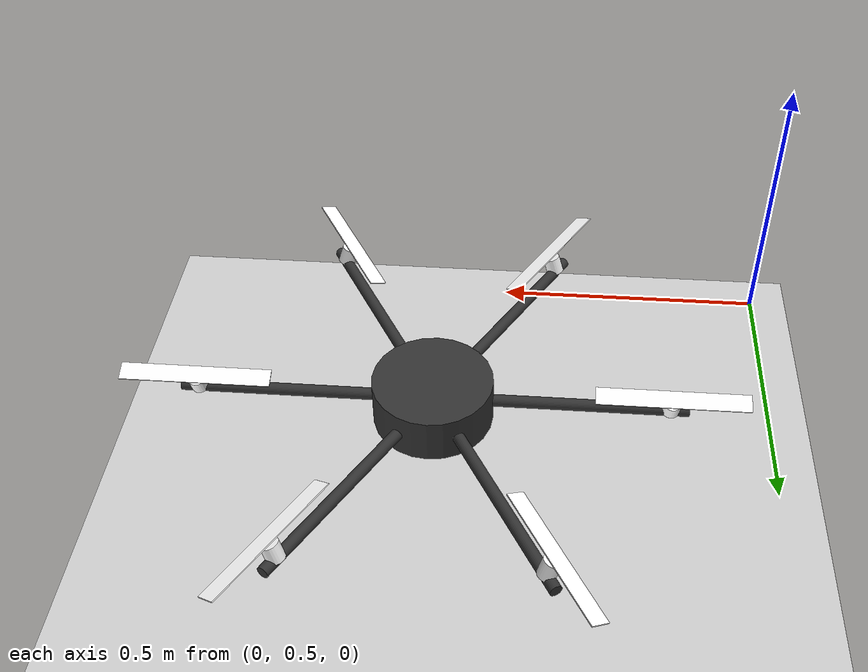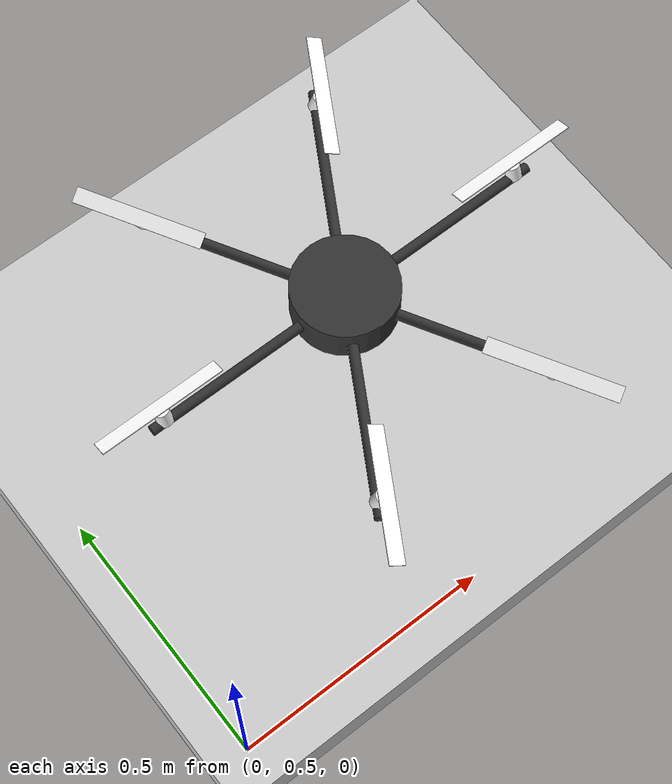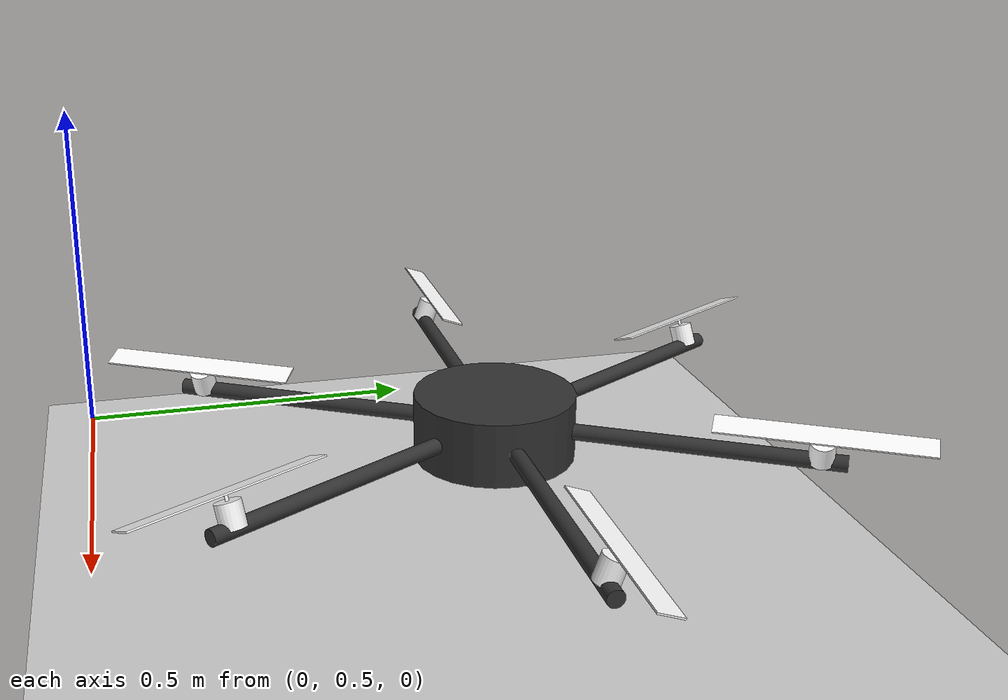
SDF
<?xml version="1.0"?>
<sdf version="1.5">
<world name="mrsim">
    <physics type='ode'>
        <max_step_size>0.002000</max_step_size>
        <real_time_factor>1.000000</real_time_factor>
        <real_time_update_rate>500.000000</real_time_update_rate>
        <gravity>0 0 -9.81</gravity>
        <magnetic_field>23.816e-6 -0.41e-6 -39.829e-6</magnetic_field>
    </physics>

    <light type="directional" name="sun">
        <cast_shadows>true</cast_shadows>
        <pose>0 0 10 0 0 0</pose>
        <diffuse>0.8 0.8 0.8 1</diffuse>
        <specular>0.2 0.2 0.2 1</specular>
        <attenuation>
        <range>1000</range>
        <constant>0.9</constant>
        <linear>0.01</linear>
        <quadratic>0.001</quadratic>
        </attenuation>
        <direction>-0.5 0.1 -0.9</direction>
    </light>

    <model name="ground_plane">
        <static>true</static>
        <link name="link">
            <pose>0 0 -0.05 0 0 0</pose>
            <collision name="collision">
                <geometry>
                    <box>
                        <size>20 20 0.1</size>
                    </box>
                </geometry>
            </collision>
            <visual name="visual">
                <geometry>
                    <box>
                        <size>20 20 0.1</size>
                    </box>
                </geometry>
                <material>
                    <ambient>0.8 0.8 0.8 1</ambient>
                    <diffuse>0.8 0.8 0.8 1</diffuse>
                    <specular>0.8 0.8 0.8 1</specular>
                </material>
            </visual>
        </link>
    </model>

    <model name="TX">
        <pose>0.6 1 0.2 0 0 0</pose>
        <include>
            <uri>model://mrsim-tilthex</uri>
            <name>tx</name>
        </include>
    </model>

    <plugin name="optitrack" filename="optitrack-gazebo.so">
        <hz>1000</hz>
        <port>1509</port>
        <publish>
            <link>TX::tx::base</link>
            <name>TX</name>
        </publish>
    </plugin>
</world>
</sdf>

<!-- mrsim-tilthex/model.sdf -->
<sdf version="1.5">
<model name="mrsim-tilthex">
    <link name="base">
        <inertial>
            <mass>2.5</mass>
            <inertia>
                <ixx>0.0115</ixx><ixy>0</ixy><ixz>0</ixz>
                <iyy>0.0115</iyy><iyz>0</iyz>
                <izz>0.0194</izz>
            </inertia>
        </inertial>

        <collision name="body">
            <geometry>
                <cylinder><radius>0.1</radius><length>0.08</length></cylinder>
            </geometry>
        </collision>

        <!-- three spheres to make contact stable -->
        <collision name="land_1">
            <pose>0.067 0 0 0 0 0</pose>
            <geometry>
                <sphere><radius>0.04</radius></sphere>
            </geometry>
        </collision>
        <collision name="land_2">
            <pose>-0.06 0.03 0 0 0 0</pose>
            <geometry>
                <sphere><radius>0.04</radius></sphere>
            </geometry>
        </collision>
        <collision name="land_3">
            <pose>-0.05 -0.03 0 0 0 0</pose>
            <geometry>
                <sphere><radius>0.04</radius></sphere>
            </geometry>
        </collision>

        <!-- contact for the arms -->
        <collision name="arm_1">
            <pose>0.21 0 0 0 1.5708 0</pose>
            <geometry>
                <cylinder><radius>0.01</radius><length>0.42</length></cylinder>
            </geometry>
        </collision>
        <collision name="arm_2">
            <pose>0.1050 0.1819 0 0 1.5708 1.0472</pose>
            <geometry>
                <cylinder><radius>0.01</radius><length>0.42</length></cylinder>
            </geometry>
        </collision>
        <collision name="arm_3">
            <pose>-0.1050 0.1819 0 0 1.5708 -1.0472</pose>
            <geometry>
                <cylinder><radius>0.01</radius><length>0.42</length></cylinder>
            </geometry>
        </collision>
        <collision name="arm_4">
            <pose>-0.21 0 0 0 1.5708 0</pose>
            <geometry>
                <cylinder><radius>0.01</radius><length>0.42</length></cylinder>
            </geometry>
        </collision>
        <collision name="arm_5">
            <pose>-0.1050 -0.1819 0 0 1.5708 1.0472</pose>
            <geometry>
                <cylinder><radius>0.01</radius><length>0.42</length></cylinder>
            </geometry>
        </collision>
        <collision name="arm_6">
            <pose>0.1050 -0.1819 0 0 1.5708 -1.0472</pose>
            <geometry>
                <cylinder><radius>0.01</radius><length>0.42</length></cylinder>
            </geometry>
        </collision>

        <visual name="body">
            <geometry>
                <cylinder><radius>0.1</radius><length>0.08</length></cylinder>
            </geometry>
            <material>
                <diffuse>0.2 0.2 0.2 1</diffuse>
            </material>
        </visual>
        <visual name="arm_1">
            <pose>0.21 0 0 0 1.5708 0</pose>
            <geometry>
                <cylinder><radius>0.01</radius><length>0.42</length></cylinder>
            </geometry>
            <material>
                <diffuse>0.2 0.2 0.2 1</diffuse>
            </material>
        </visual>
        <visual name="arm_2">
            <pose>0.1050 0.1819 0 0 1.5708 1.0472</pose>
            <geometry>
                <cylinder><radius>0.01</radius><length>0.42</length></cylinder>
            </geometry>
            <material>
                <diffuse>0.2 0.2 0.2 1</diffuse>
            </material>
        </visual>
        <visual name="arm_3">
            <pose>-0.1050 0.1819 0 0 1.5708 -1.0472</pose>
            <geometry>
                <cylinder><radius>0.01</radius><length>0.42</length></cylinder>
            </geometry>
            <material>
                <diffuse>0.2 0.2 0.2 1</diffuse>
            </material>
        </visual>
        <visual name="arm_4">
            <pose>-0.21 0 0 0 1.5708 0</pose>
            <geometry>
                <cylinder><radius>0.01</radius><length>0.42</length></cylinder>
            </geometry>
            <material>
                <diffuse>0.2 0.2 0.2 1</diffuse>
            </material>
        </visual>
        <visual name="arm_5">
            <pose>-0.1050 -0.1819 0 0 1.5708 1.0472</pose>
            <geometry>
                <cylinder><radius>0.01</radius><length>0.42</length></cylinder>
            </geometry>
            <material>
                <diffuse>0.2 0.2 0.2 1</diffuse>
            </material>
        </visual>
        <visual name="arm_6">
            <pose>0.1050 -0.1819 0 0 1.5708 -1.0472</pose>
            <geometry>
                <cylinder><radius>0.01</radius><length>0.42</length></cylinder>
            </geometry>
            <material>
                <diffuse>0.2 0.2 0.2 1</diffuse>
            </material>
        </visual>
    </link>

    <include>
        <uri>model://mrsim-rotor</uri>
        <name>rotor_1_link</name>
        <pose>0.39 0 0 -0.3491 0 0</pose>
    </include>
    <joint name="rotor_1_joint" type="revolute">
        <parent>base</parent>
        <child>rotor_1_link::propeller</child>
        <axis><xyz>0 0 1</xyz></axis>
    </joint>

    <include>
        <uri>model://mrsim-rotor</uri>
        <name>rotor_2_link</name>
        <pose>0.195 0.3377 0 0.3491 0 1.0472</pose>
    </include>
    <joint name="rotor_2_joint" type="revolute">
        <parent>base</parent>
        <child>rotor_2_link::propeller</child>
        <axis><xyz>0 0 1</xyz></axis>
    </joint>

    <include>
        <uri>model://mrsim-rotor</uri>
        <name>rotor_3_link</name>
        <pose>-0.195 0.3377 0 -0.3491 0 2.0944</pose>
    </include>
    <joint name="rotor_3_joint" type="revolute">
        <parent>base</parent>
        <child>rotor_3_link::propeller</child>
        <axis><xyz>0 0 1</xyz></axis>
    </joint>

    <include>
        <uri>model://mrsim-rotor</uri>
        <name>rotor_4_link</name>
        <pose>-0.39 0 0 -0.3491 0 0</pose>
    </include>
    <joint name="rotor_4_joint" type="revolute">
        <parent>base</parent>
        <child>rotor_4_link::propeller</child>
        <axis><xyz>0 0 1</xyz></axis>
    </joint>

    <include>
        <uri>model://mrsim-rotor</uri>
        <name>rotor_5_link</name>
        <pose>-0.195 -0.3377 0 -0.3491 0 -2.0944</pose>
    </include>
    <joint name="rotor_5_joint" type="revolute">
        <parent>base</parent>
        <child>rotor_5_link::propeller</child>
        <axis><xyz>0 0 1</xyz></axis>
    </joint>

    <include>
        <uri>model://mrsim-rotor</uri>
        <name>rotor_6_link</name>
        <pose>0.195 -0.3377 0 0.3491 0 -1.0472</pose>
    </include>
    <joint name="rotor_6_joint" type="revolute">
        <parent>base</parent>
        <child>rotor_6_link::propeller</child>
        <axis><xyz>0 0 1</xyz></axis>
    </joint>

    <plugin name="mrsim" filename="mrsim-gazebo.so">
        <link>base</link>
        <rotors>
        <noise>0.03</noise>
            <cf>11.4e-4</cf>
            <ct>2.4e-5</ct>
            <rotor><joint spin="cw">rotor_1_joint</joint></rotor>
            <rotor><joint spin="ccw">rotor_2_joint</joint></rotor>
            <rotor><joint spin="cw">rotor_3_joint</joint></rotor>
            <rotor><joint spin="ccw">rotor_4_joint</joint></rotor>
            <rotor><joint spin="cw">rotor_5_joint</joint></rotor>
            <rotor><joint spin="ccw">rotor_6_joint</joint></rotor>
        </rotors>
    </plugin>
</model>
</sdf>

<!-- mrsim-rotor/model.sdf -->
<sdf version="1.5">
  <model name="mrsim-rotor">
    <link name="propeller">
      <inertial>
        <mass>0.07</mass>
        <inertia>
          <ixx>4e-5</ixx><ixy>0</ixy><ixz>0</ixz>
          <iyy>4e-5</iyy><iyz>0</iyz>
          <izz>8e-5</izz>
        </inertia>
      </inertial>

      <collision name="collision">
        <pose>0 0 0.04 0 0 0</pose>
        <geometry>
          <cylinder><radius>0.127</radius><length>0.002</length></cylinder>
        </geometry>
      </collision>

      <visual name="motor">
        <pose>0 0 0.015 0 0 0</pose>
        <geometry>
          <cylinder><radius>0.015</radius><length>0.03</length></cylinder>
        </geometry>
        <material>
          <ambient>0.1 0.1 0.1 1</ambient>
          <diffuse>1.0 1.0 1.0 1</diffuse>
        </material>
      </visual>

      <visual name="axle">
        <pose>0 0 0.035 0 0 0</pose>
        <geometry>
          <cylinder><radius>0.002</radius><length>0.01</length></cylinder>
        </geometry>
        <material>
          <ambient>0.1 0.1 0.1 1</ambient>
          <diffuse>1.0 1.0 1.0 1</diffuse>
        </material>
      </visual>

      <visual name="blade">
        <pose>0 0 0.04 0 0 0</pose>
        <geometry>
          <box><size>0.25 0.03 0.002</size></box>
        </geometry>
        <material>
          <ambient>0.1 0.1 0.1 1</ambient>
          <diffuse>1.0 1.0 1.0 1</diffuse>
        </material>
      </visual>
    </link>
  </model>
</sdf>
